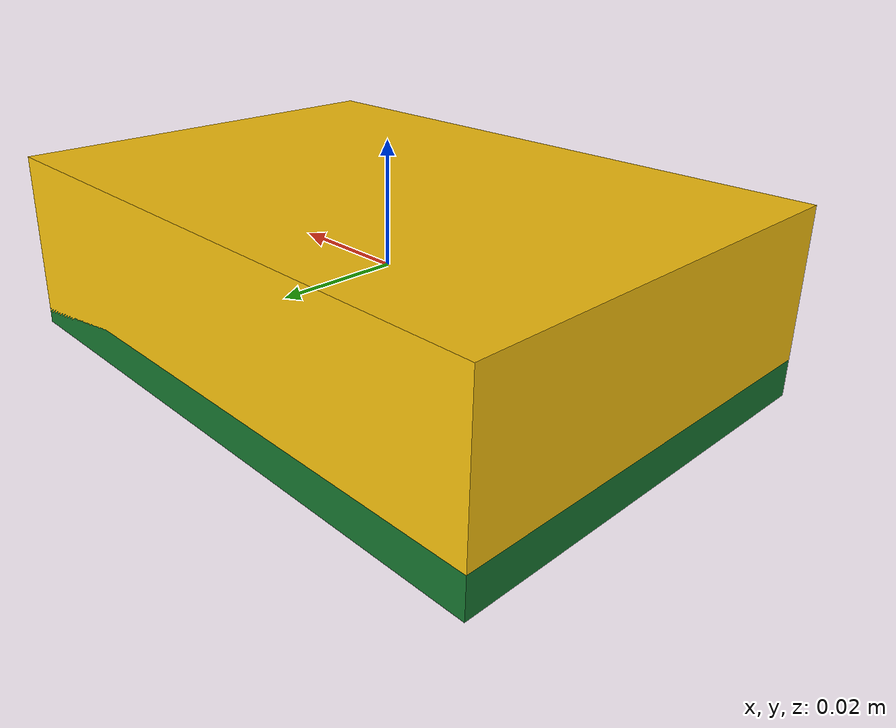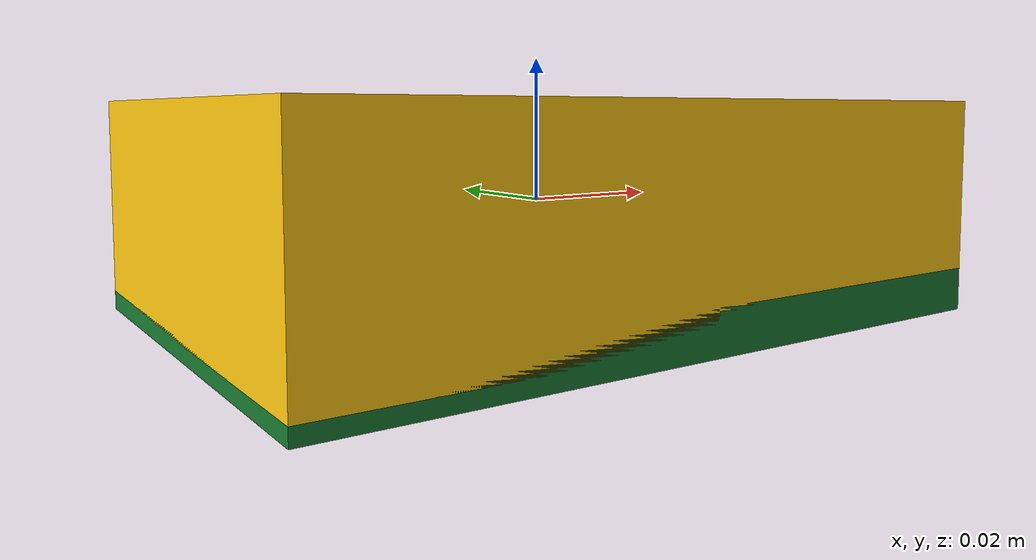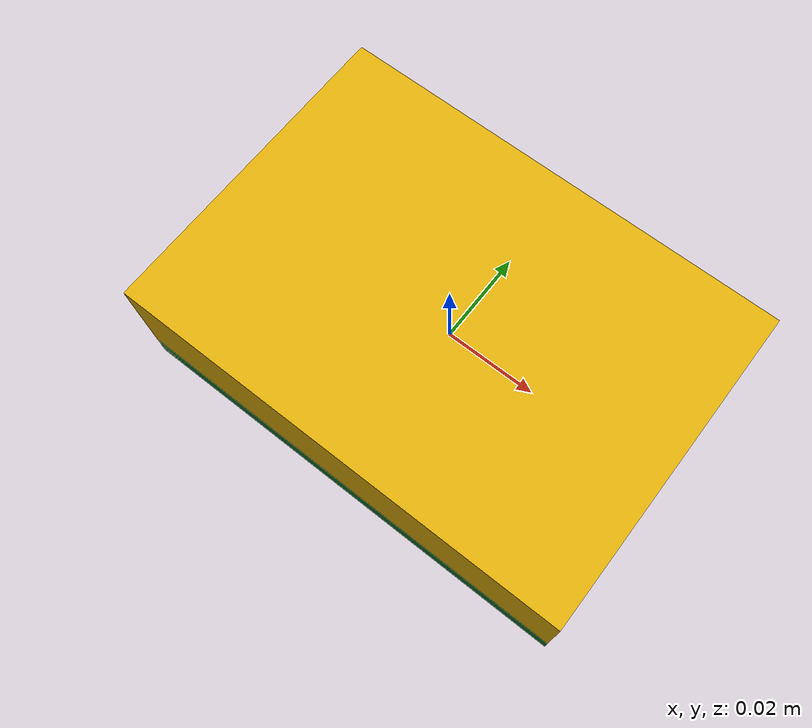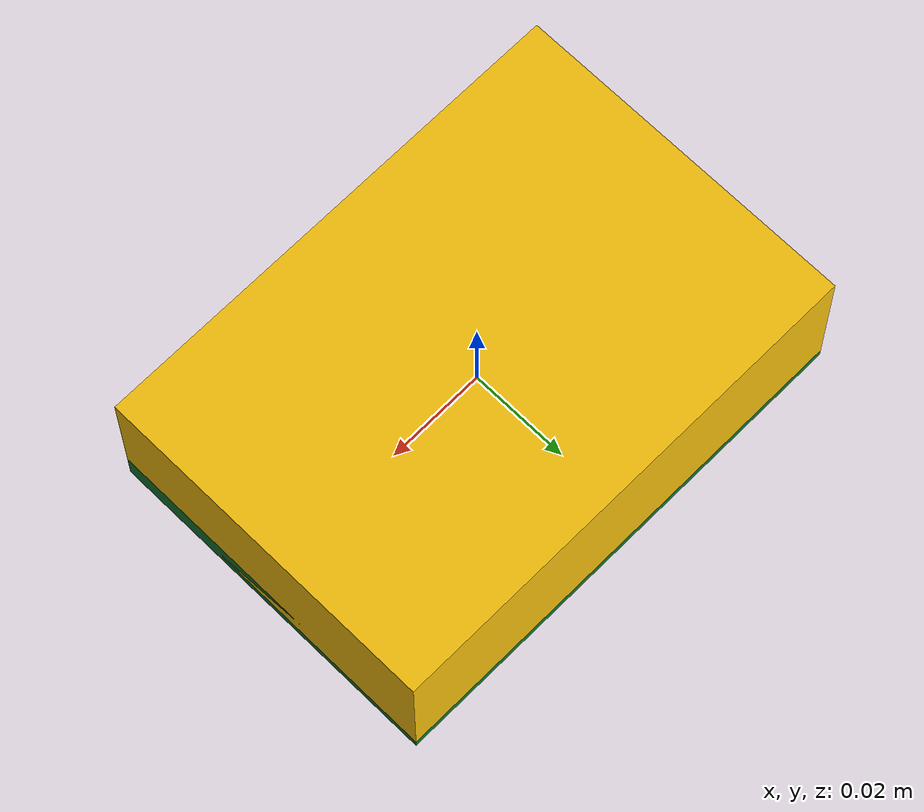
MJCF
<mujoco model="robocasa_sponge">
  <!-- Clean-room LIBERO object implementing RoboCasa's WipeTable task role. -->
  <asset>
    <material name="sponge_yellow" rgba="0.96 0.75 0.05 1" shininess="0.05"/>
    <material name="sponge_green" rgba="0.08 0.45 0.18 1" shininess="0.05"/>
  </asset>
  <worldbody>
    <body>
      <body name="object">
        <geom name="sponge_body_visual" type="box" pos="0 0 0" size="0.050 0.035 0.014"
              material="sponge_yellow" contype="0" conaffinity="0" group="1"/>
        <geom name="sponge_scrub_visual" type="box" pos="0 0 -0.013" size="0.050 0.035 0.003"
              material="sponge_green" contype="0" conaffinity="0" group="1"/>
        <geom name="sponge_collision" type="box" pos="0 0 0" size="0.050 0.035 0.014"
              mass="0.055" friction="1.3 0.4 0.15" solimp="0.98 0.99 0.01" group="0"
              rgba="0.3 0.3 1 0.20"/>
      </body>
      <site name="bottom_site" pos="0 0 -0.017" size="0.004" rgba="0 0 0 0"/>
      <site name="top_site" pos="0 0 0.014" size="0.004" rgba="0 0 0 0"/>
      <site name="horizontal_radius_site" pos="0.052 0.037 0" size="0.004" rgba="0 0 0 0"/>
    </body>
  </worldbody>
</mujoco>
